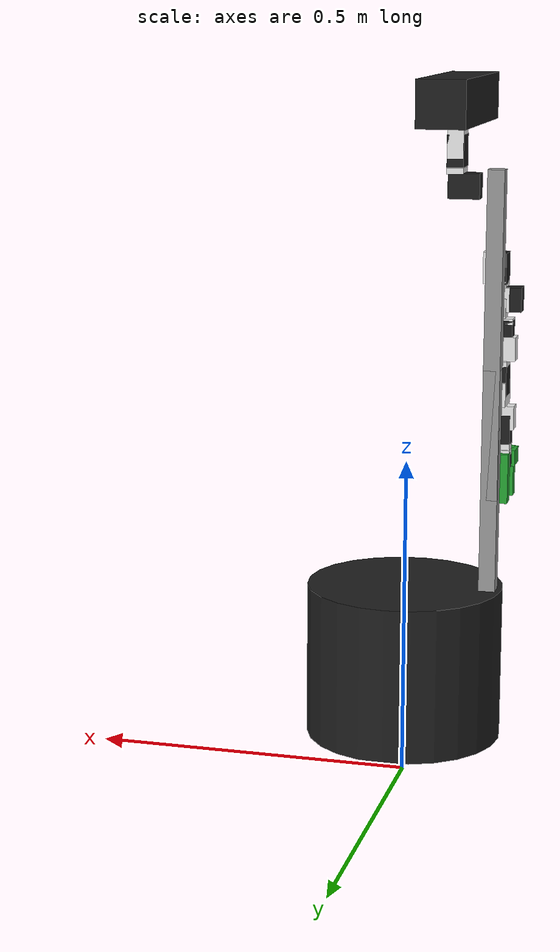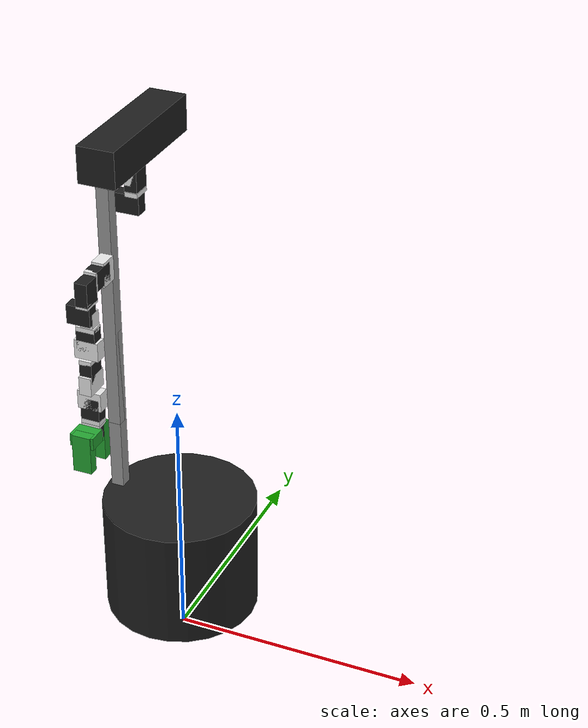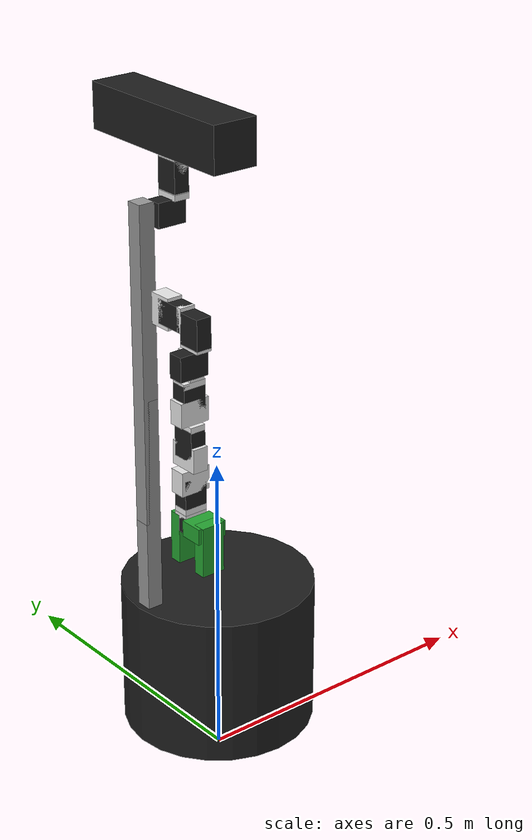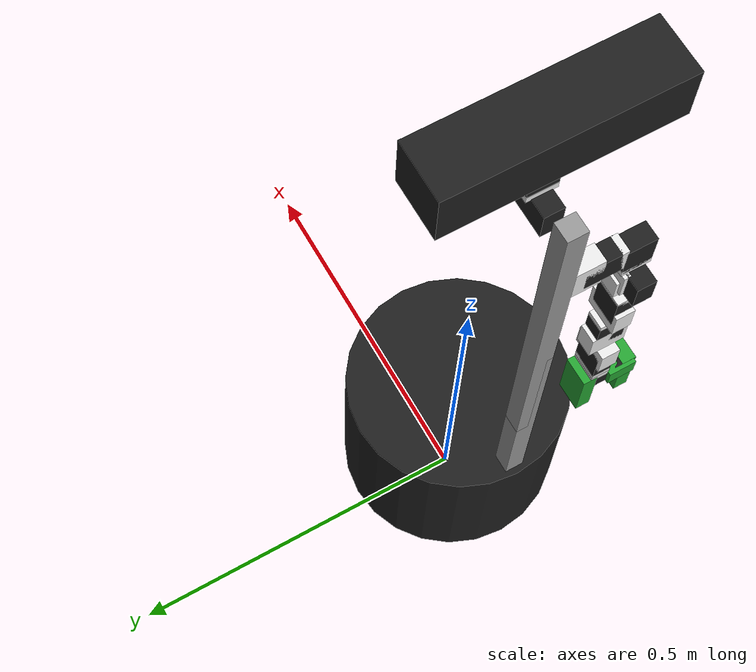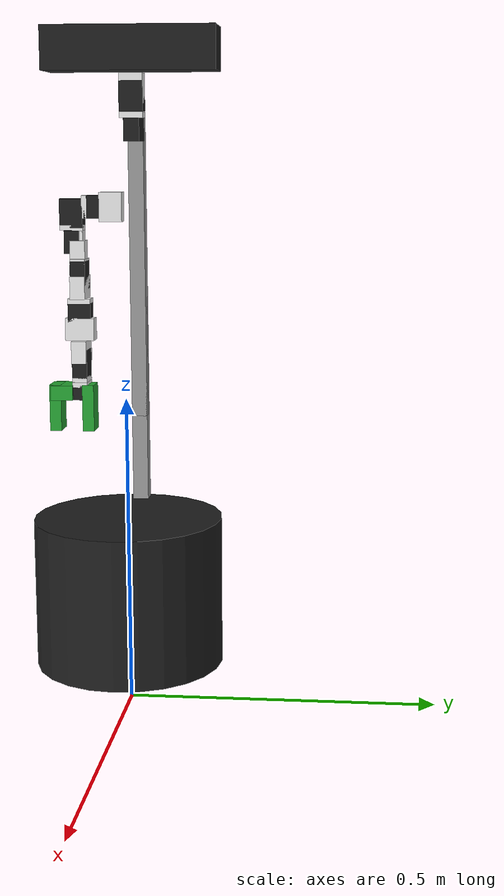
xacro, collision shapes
<?xml version="1.0"?>

<robot name="pi_robot" xmlns:xacro="http://ros.org/wiki/xacro">

   <!-- Define a number of dimensions using properties -->
   <property name="lower_torso_offset_x" value="-0.13" />
   <property name="lower_torso_offset_y" value="0.0" />
   <property name="lower_torso_offset_z" value="0.335" />

   <property name="head_offset_x" value="0.0595" />
   <property name="head_offset_y" value="0.0036" />
   <property name="head_offset_z" value="0.225" />

   <property name="arm_offset_x" value="0.01" />
   <property name="arm_offset_y" value="-0.05" />
   <property name="arm_offset_z" value="0.1" />

   <!-- The following xacro:include files set up definitions of parts of the robot body -->
   <xacro:include filename="$(find rbx2_description)/urdf/materials.urdf.xacro" />
   <xacro:include filename="$(find rbx2_description)/urdf/pi_robot/pi_base.urdf.xacro" />
   <xacro:include filename="$(find rbx2_description)/urdf/pi_robot/pi_tele_torso.urdf.xacro" />
   <xacro:include filename="$(find rbx2_description)/urdf/pi_robot/pi_pan_tilt_head.urdf.xacro" />
   <xacro:include filename="$(find rbx2_description)/urdf/pi_robot/pi_arm.urdf.xacro" />
   <xacro:include filename="$(find rbx2_description)/urdf/pi_robot/pi_gripper.urdf.xacro" />

   <!-- Now we can start using the macros included above to define the actual robot -->

   <!-- Start with the base and wheels -->
   <base name="base" color="Black"/>

   <!-- Attach the torso -->
   <torso name="torso" parent="base" color="Grey">
      <origin xyz="${lower_torso_offset_x} ${lower_torso_offset_y} ${lower_torso_offset_z}" rpy="0 0 0" />
   </torso>

   <!-- Attach the pan and tilt head -->
   <head name="head_base" parent="upper_torso" color="White">
      <origin xyz="${head_offset_x} ${head_offset_y} ${head_offset_z}" rpy="${PI/2} 0 ${PI/2}" />
   </head>

   <!-- Attach the right arm -->
   <arm side="right" reflect="-1" parent="upper_torso" color="White">
     <origin xyz="${arm_offset_x} ${arm_offset_y} ${arm_offset_z}" rpy="0 0 ${PI/2}" />
   </arm>

   <!-- Attach the right gripper -->
   <gripper side="right" reflect="-1" parent="right_arm_gripper_attach" color="Green">
     <origin xyz="0 0 0" rpy="0 0 0" />
   </gripper>

</robot>

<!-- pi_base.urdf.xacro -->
<robot name="base" xmlns:xacro="http://ros.org/wiki/xacro">

  <!-- Define a number of dimensions using properties -->
  <property name="wheel_length" value="0.02032" />
  <property name="wheel_radius" value="0.06191" />
  <property name="wheel_offset_x" value="0.07" />
  <property name="wheel_offset_y" value="0.13" />
  <property name="wheel_offset_z" value="-0.0035" />

  <property name="base_radius" value="0.152" />
  <property name="base_height" value="0.241" />

  <property name="base_mesh_scale" value="0.0254" />

  <property name="PI" value="3.1415" />

  <!-- define a wheel -->
  <macro name="wheel" params="suffix parent reflect color">
    <joint name="${parent}_${suffix}_wheel_joint" type="continuous">
      <axis xyz="0 0 1" />
      <limit effort="100" velocity="100"/>
      <safety_controller k_velocity="10" />
      <origin xyz="${wheel_offset_x} ${reflect*wheel_offset_y} ${wheel_offset_z}" rpy="${reflect*1.57} 0 0" />
      <parent link="${parent}_link"/>
      <child link="${parent}_${suffix}_wheel_link"/>
    </joint>
    <link name="${parent}_${suffix}_wheel_link">
      <visual>
        <origin xyz="0 0 0" rpy="0 0 0" />
        <geometry>
          <cylinder radius="${wheel_radius}" length="${wheel_length}"/>
        </geometry>
        <material name="${color}" />
      </visual>
    </link>
  </macro>

  <!-- The base xacro macro -->
  <macro name="base" params="name color">
    <link name="${name}_link">
      <visual>
        <origin xyz="0 0 0" rpy="0 0 ${PI/2}" />
        <geometry>
           <mesh filename="package://rbx2_description/meshes/pi_robot/pi_robot_base.stl" scale="${base_mesh_scale} ${base_mesh_scale} ${base_mesh_scale}" />
        </geometry>
        <material name="${color}" />
      </visual>
      <collision>
        <origin xyz="0 0 ${base_height/2}" rpy="0 0 0" />
        <geometry>
           <cylinder radius="${base_radius}" length="${base_height}"/>
        </geometry>
      </collision>
    </link>
  </macro>

  <link name="base_footprint">
      <visual>
        <origin xyz="0 0 0" rpy="0 0 0" />
        <geometry>
          <box size="0.05 0.05 0.001" />
        </geometry>
        <material name="TransparentGreen" />
      </visual>
  </link>

  <joint name="base_joint" type="fixed">
    <origin xyz="0 0 ${wheel_radius - wheel_offset_z}" rpy="0 0 0" />
    <parent link="base_footprint"/>
    <child link="base_link" />
  </joint>

   <!-- Add the drive wheels -->
   <wheel parent="base" suffix="l" reflect="1" color="Orange"/>
   <wheel parent="base" suffix="r" reflect="-1" color="Orange"/>

</robot>

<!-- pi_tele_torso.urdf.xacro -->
<robot name="torso" xmlns:xacro="http://ros.org/wiki/xacro">

  <!-- Define a number of dimensions using properties -->
  <property name="lower_torso_size_x" value="0.0254" />
  <property name="lower_torso_size_y" value="0.0254" />
  <property name="lower_torso_size_z" value="0.5" />

  <property name="upper_torso_size_x" value="0.0254" />
  <property name="upper_torso_size_y" value="0.0254" />
  <property name="upper_torso_size_z" value="0.5" />

  <!-- Define the torso -->
  <macro name="torso" params="parent name color *origin">
    <joint name="${parent}_${name}_joint" type="fixed">
      <xacro:insert_block name="origin" />
      <parent link="${parent}_link"/>
      <child link="lower_${name}_link"/>
    </joint>

    <link name="lower_${name}_link">
      <visual>
        <origin xyz="0 0 0" rpy="0 0 0" />
        <geometry>
          <box size="${lower_torso_size_x} ${lower_torso_size_y} ${lower_torso_size_z}" />
        </geometry>
        <material name="${color}" />
      </visual>
      <collision>
        <origin xyz="0 0 0" rpy="0 0 0" />
        <geometry>
          <box size="${lower_torso_size_x} ${lower_torso_size_y} ${lower_torso_size_z}" />
        </geometry>
      </collision>
    </link>

    <link name="upper_${name}_link">
      <visual>
        <origin xyz="0 0 0" rpy="0 0 0" />
        <geometry>
          <box size="${upper_torso_size_x} ${upper_torso_size_y} ${upper_torso_size_z}" />
        </geometry>
        <material name="${color}" />
      </visual>
      <collision>
        <origin xyz="0 0 0" rpy="0 0 0" />
        <geometry>
          <box size="${upper_torso_size_x} ${upper_torso_size_y} ${upper_torso_size_z}" />
        </geometry>
      </collision>
    </link>

    <joint name="${name}_joint" type="prismatic">
      <parent link="lower_${name}_link"/>
      <child link="upper_${name}_link"/>
      <axis xyz="0 0 1" />
      <origin xyz="0 0 0.3" rpy="0 0 0"/>
      <limit lower="-0.15" upper="0.15" velocity="0.1" effort="1.0" />
    </joint>

  </macro>

</robot>

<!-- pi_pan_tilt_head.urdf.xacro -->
<robot name="pan_tilt_head" xmlns:xacro="http://ros.org/wiki/xacro">

  <property name="camera_offset_x" value="0.0" />
  <property name="camera_offset_y" value="0.0" />
  <property name="camera_offset_z" value="0.0615" />

  <property name="camera_mesh_scale" value="1.0" />

  <xacro:include filename="$(find rbx2_description)/urdf/pi_robot/dynamixel_head_hardware.xacro" />
  <xacro:include filename="$(find rbx2_description)/urdf/pi_robot/kinect.urdf.xacro" />

  <macro name="head" params="parent name color *origin">
    <!-- head base joint -->
    <joint name="${name}_joint" type="fixed">
      <xacro:insert_block name="origin" />
      <parent link="${parent}_link"/>
      <child link="${name}_link" />
    </joint>
    <link name="${name}_link">
      <origin xyz="0 0 0" rpy="0 0 0" />
      <inertial>
        <mass value="0.00001" />
        <inertia ixx="1.0" ixy="0.0" ixz="0.0"
          iyy="1.0" iyz="0.0"
          izz="1.0" />
      </inertial>

      <visual>
        <origin xyz="0 0 0 " rpy="0 0 0" />
        <geometry>
           <cylinder length="0.00001" radius="0.01" />
        </geometry>
      </visual>

      <collision>
        <origin xyz="0 0 0 " rpy="0 0 0" />
        <geometry>
           <cylinder length="0.00001" radius="0.01" />
        </geometry>
      </collision>
    </link>

    <!-- head pan joint -->
    <dynamixel_AX12_fixed parent="head_base" name="head_pan_servo">
       <origin xyz="0 0 0" rpy="0 0 0" />
    </dynamixel_AX12_fixed>

    <bioloid_F3_head_revolute parent="head_pan_servo" name="head_pan_bracket" joint_name="head_pan" ulimit="2.53" llimit="-2.53" vlimit="1.571" color="${color}">
       <origin xyz="0 ${AX12_WIDTH/2 + 0.005} 0" rpy="${-PI/2} ${PI/2} ${PI}" />
    </bioloid_F3_head_revolute>

    <!--head tilt joint -->
    <dynamixel_AX12_fixed parent="head_pan_bracket" name="head_tilt_servo">
       <origin xyz="0 0 ${-AX12_HEIGHT-F10_HEIGHT+0.001}" rpy="0 ${PI} 0"/>
    </dynamixel_AX12_fixed>

    <bioloid_F2_head_revolute parent="head_tilt_servo" name="head_tilt_bracket" joint_name="head_tilt" ulimit="2.53" llimit="-2.53" vlimit="1.571" color="${color}" >
       <origin xyz="0 0 0" rpy="0 0 0" />
    </bioloid_F2_head_revolute>

   <!-- Attach the camera -->
   <camera name="camera" parent="head_tilt_bracket" color="Black">
      <origin xyz="${camera_offset_x} ${camera_offset_y} ${camera_offset_z}" rpy="0 0 0" />
   </camera>

 </macro>

</robot>

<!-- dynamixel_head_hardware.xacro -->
<robot name="head_hardware" xmlns:xacro="http://ros.org/wiki/xacro">

  <property name="PI" value="3.14159"/>
  <property name="DYNAMIXEL_MESH_SCALE" value="0.001"/>

  <property name="F10_HEIGHT" value="0.004"/>

  <property name="F4_WIDTH" value="0.0480"/>
  <property name="F4_HEIGHT" value="0.0625"/>
  <property name="F4_DEPTH" value="0.0245"/>

  <property name="F2_DEPTH" value="0.0245"/>
  <property name="F2_WIDTH" value="0.0480"/>
  <property name="F2_HEIGHT" value="0.0380"/>

  <property name="F3_WIDTH" value="0.038"/>
  <property name="F3_HEIGHT" value="0.009"/>
  <property name="F3_DEPTH" value="0.025"/>

  <property name="AX12_HEIGHT" value="0.0385"/>
  <property name="AX12_WIDTH" value="0.035"/>
  <property name="AX12_DEPTH" value="0.049"/>

  <macro name="bioloid_F10_fixed" params="parent name color *origin">
    <joint name="${name}_joint" type="fixed">
      <xacro:insert_block name="origin"/>
      <parent link="${parent}_link"/>
      <child link="${name}_link" />
    </joint>

    <link name="${name}_link">
      <inertial>
        <mass value="0.00001" />
        <origin xyz="0 0 0" />
        <inertia ixx="1.0" ixy="0.0" ixz="0.0"
          iyy="1.0" iyz="0.0"
          izz="1.0" />
      </inertial>

      <visual>
        <origin xyz="0 0 0 " rpy="0 0 0" />
        <geometry>
          <mesh filename="package://rbx2_description/meshes/F10.stl" scale="${DYNAMIXEL_MESH_SCALE} ${DYNAMIXEL_MESH_SCALE} ${DYNAMIXEL_MESH_SCALE}"/>
        </geometry>
        <material name="${color}"/>
      </visual>

      <collision>
        <origin xyz="0 0 0" rpy="0 0 0" />
        <geometry>
          <box size="0.025 0.038 0.004"/>
        </geometry>
      </collision>
    </link>
  </macro>

  <macro name="bioloid_F3_fixed" params="parent name color *origin">
    <joint name="${name}_joint" type="fixed">
      <xacro:insert_block name="origin"/>
      <parent link="${parent}_link"/>
      <child link="${name}_link" />
    </joint>

    <link name="${name}_link">
      <inertial>
        <mass value="0.00001" />
        <origin xyz="0 0 0" />
        <inertia ixx="1.0" ixy="0.0" ixz="0.0"
          iyy="1.0" iyz="0.0"
          izz="1.0" />
      </inertial>

      <visual>
        <origin xyz="0 0 0 " rpy="0 0 0" />
        <geometry>
          <mesh filename="package://rbx2_description/meshes/F3.stl" scale="${DYNAMIXEL_MESH_SCALE} ${DYNAMIXEL_MESH_SCALE} ${DYNAMIXEL_MESH_SCALE}"/>
        </geometry>
        <material name="${color}"/>
      </visual>

      <collision>
        <origin xyz="0 0 0" rpy="0 0 0" />
        <geometry>
          <box size="${F3_WIDTH} ${F3_HEIGHT} ${F3_DEPTH}"/>
        </geometry>
      </collision>
    </link>
  </macro>

  <macro name="dynamixel_AX12_fixed" params="parent name *origin">
    <joint name="${name}_joint" type="fixed">
      <xacro:insert_block name="origin" />
      <parent link="${parent}_link"/>
      <child link="${name}_link" />
    </joint>

    <link name="${name}_link">
      <inertial>
        <mass value="0.00001" />
        <origin xyz="0 0 0" />
        <inertia ixx="1.0" ixy="0.0" ixz="0.0"
          iyy="1.0" iyz="0.0"
          izz="1.0" />
      </inertial>

      <visual>
        <origin xyz="0 0 0 " rpy="0 0 0" />
        <geometry>
          <mesh filename="package://rbx2_description/meshes/ax12.stl" scale="${DYNAMIXEL_MESH_SCALE} ${DYNAMIXEL_MESH_SCALE} ${DYNAMIXEL_MESH_SCALE}"/>
        </geometry>
        <material name="Black"/>
      </visual>

      <collision>
        <origin xyz="0 0 -0.01241" rpy="0 0 0" />
        <geometry>
          <box size="${AX12_HEIGHT} ${AX12_WIDTH} ${AX12_DEPTH}"/>
        </geometry>
      </collision>
    </link>
  </macro>

  <macro name="bioloid_F3_head_revolute" params="parent name joint_name ulimit llimit vlimit color *origin">
    <joint name="${joint_name}_joint" type="revolute">
      <xacro:insert_block name="origin" />
      <parent link="${parent}_link"/>
       <axis xyz="0 0 -1"/>
       <limit lower="${llimit}" upper="${ulimit}" velocity="${vlimit}" effort="1.0" />
      <child link="${name}_link" />
    </joint>

    <link name="${name}_link">
      <inertial>
        <mass value="0.00001" />
        <origin xyz="0 0 0" />
        <inertia ixx="1.0" ixy="0.0" ixz="0.0"
          iyy="1.0" iyz="0.0"
          izz="1.0" />
      </inertial>

      <visual>
        <origin xyz="0 0 0 " rpy="0 0 0" />
        <geometry>
          <mesh filename="package://rbx2_description/meshes/F3.stl" scale="${DYNAMIXEL_MESH_SCALE} ${DYNAMIXEL_MESH_SCALE} ${DYNAMIXEL_MESH_SCALE}"/>
        </geometry>
        <material name="${color}"/>
      </visual>

      <collision>
        <origin xyz="0 0 0" rpy="0 0 0" />
        <geometry>
           <box size="${F3_DEPTH} ${F3_WIDTH} ${F3_HEIGHT}"/>
        </geometry>
      </collision>
    </link>
  </macro>

  <macro name="bioloid_F4_head_revolute" params="parent name joint_name ulimit llimit vlimit color *origin">
    <joint name="${joint_name}_joint" type="revolute">
      <xacro:insert_block name="origin"/>
      <parent link="${parent}_link"/>
      <axis xyz="0 -1 0"/>
      <limit lower="${llimit}" upper="${ulimit}" velocity="${vlimit}" effort="1.0" />
      <child link="${name}_link" />
    </joint>

    <link name="${name}_link">
      <inertial>
        <mass value="0.00001" />
        <origin xyz="0 0 0" />
        <inertia ixx="1.0" ixy="0.0" ixz="0.0"
          iyy="1.0" iyz="0.0"
          izz="1.0" />
      </inertial>

      <visual>
        <origin xyz="0 0 0 " rpy="0 0 0" />
        <geometry>
          <mesh filename="package://rbx2_description/meshes/F4.stl" scale="${DYNAMIXEL_MESH_SCALE} ${DYNAMIXEL_MESH_SCALE} ${DYNAMIXEL_MESH_SCALE}"/>
        </geometry>
        <material name="${color}"/>
      </visual>

      <collision>
        <origin xyz="0 0 0" rpy="0 0 0" />
        <geometry>
          <box size="${F4_WIDTH} ${F4_HEIGHT} ${F4_DEPTH}"/>
        </geometry>
      </collision>
    </link>
  </macro>

  <macro name="bioloid_F2_head_revolute" params="parent name joint_name ulimit llimit vlimit color *origin">
    <joint name="${joint_name}_joint" type="revolute">
      <xacro:insert_block name="origin" />
      <parent link="${parent}_link"/>
      <axis xyz="0 1 0"/>
      <limit lower="${llimit}" upper="${ulimit}" velocity="${vlimit}" effort="1.0" />
      <child link="${name}_link" />
    </joint>

    <link name="${name}_link">
      <inertial>
        <mass value="0.00001" />
        <origin xyz="0 0 0" />
        <inertia ixx="1.0" ixy="0.0" ixz="0.0"
          iyy="1.0" iyz="0.0"
          izz="1.0" />
      </inertial>

      <visual>
        <origin xyz="0 0 0 " rpy="0 0 0" />
        <geometry>
          <mesh filename="package://rbx2_description/meshes/F2.stl" scale="${DYNAMIXEL_MESH_SCALE} ${DYNAMIXEL_MESH_SCALE} ${DYNAMIXEL_MESH_SCALE}"/>
        </geometry>
        <material name="${color}"/>
      </visual>

      <collision>
        <origin xyz="0 0 0" rpy="0 0 0" />
        <geometry>
          <box size="${F2_DEPTH} ${F2_HEIGHT} ${F2_WIDTH}"/>
        </geometry>
      </collision>
    </link>
  </macro>

</robot>

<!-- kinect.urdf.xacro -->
<robot name="kinect" xmlns:xacro="http://ros.org/wiki/xacro">

   <!-- Define a number of dimensions using properties -->
   <property name="kinect_size_x" value="0.07271" />
   <property name="kinect_size_y" value="0.27794" />
   <property name="kinect_size_z" value="0.070" />

   <property name="camera_mesh_scale" value="1.0" />

   <property name="PI" value="3.1415" />

   <!-- Define a camera link for a Kinect -->
   <macro name="camera" params="parent name color *origin">
      <joint name="${parent}_${name}_joint" type="fixed">
         <xacro:insert_block name="origin" />
         <parent link="${parent}_link"/>
         <child link="${name}_link"/>
      </joint>
      <link name="${name}_link">
         <visual>
            <origin xyz="0 0 0" rpy="0 0 ${PI/2}" />
            <geometry>
               <mesh filename="package://rbx2_description/meshes/kinect.dae" scale="${camera_mesh_scale} ${camera_mesh_scale} ${camera_mesh_scale}" />
            </geometry>
            <material name="${color}" />
         </visual>
         <collision>
           <origin xyz="0 0 0" rpy="0 0 0" />
           <geometry>
              <box size="${kinect_size_x} ${kinect_size_y} ${kinect_size_z}"/>
           </geometry>
         </collision>
      </link>

      <joint name="camera_depth_joint" type="fixed">
         <origin xyz="0 0.0125 0.015" rpy="0 0 0" />
          <parent link="camera_link" />
          <child link="camera_depth_frame" />
      </joint>

      <link name="camera_depth_frame">
      <inertial>
         <mass value="0.000001" />
         <origin xyz="0 0 0" />
         <inertia ixx="0.0001" ixy="0.0" ixz="0.0"
            iyy="0.0001" iyz="0.0"
            izz="0.0001" />
         </inertial>
      </link>

      <joint name="camera_depth_optical_joint" type="fixed">
         <origin xyz="0 0 0" rpy="${-PI/2} 0 ${-PI/2}" />
         <parent link="camera_depth_frame" />
         <child link="camera_depth_optical_frame" />
      </joint>

      <link name="camera_depth_optical_frame">
         <inertial>
            <mass value="0.000001" />
            <origin xyz="0 0 0" />
            <inertia ixx="0.0001" ixy="0.0" ixz="0.0"
               iyy="0.0001" iyz="0.0"
               izz="0.0001" />
         </inertial>
      </link>

      <joint name="camera_rgb_joint" type="fixed">
         <origin xyz="0 -0.0125 0.015" rpy="0 0 0" />
         <parent link="camera_link" />
         <child link="camera_rgb_frame" />
      </joint>

      <link name="camera_rgb_frame">
         <inertial>
         <mass value="0.000001" />
         <origin xyz="0 0 0" />
         <inertia ixx="0.0001" ixy="0.0" ixz="0.0"
            iyy="0.0001" iyz="0.0"
            izz="0.0001" />
         </inertial>
      </link>

      <joint name="camera_rgb_optical_joint" type="fixed">
         <origin xyz="0 0 0" rpy="${-PI/2} 0 ${-PI/2}" />
         <parent link="camera_rgb_frame" />
         <child link="camera_rgb_optical_frame" />
      </joint>

      <link name="camera_rgb_optical_frame">
         <inertial>
            <mass value="0.000001" />
            <origin xyz="0 0 0" />
            <inertia ixx="0.0001" ixy="0.0" ixz="0.0"
               iyy="0.0001" iyz="0.0"
               izz="0.0001" />
         </inertial>
      </link>

   </macro>

</robot>

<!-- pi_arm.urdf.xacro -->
<robot name="arm" xmlns:xacro="http://ros.org/wiki/xacro">

  <xacro:include filename="$(find rbx2_description)/urdf/pi_robot/dynamixel_arm_hardware.xacro" />

  <macro name="arm" params="side reflect parent color *origin">
    <link name="${side}_arm_base_link" />
    <joint name="${side}_arm_base_joint" type="fixed">
      <xacro:insert_block name="origin" />
      <parent link="${parent}_link" />
      <child link="${side}_arm_base_link" />
    </joint>

    <!-- shoulder pan -->
    <bioloid_F2_fixed parent="${side}_arm_base" name="${side}_arm_shoulder_F2_0" color="${color}">
      <origin xyz="0 0 0" rpy="${PI/2} 0 ${PI/2}" />
    </bioloid_F2_fixed>

    <dynamixel_AX12_revolute parent="${side}_arm_shoulder_F2_0" name="${side}_arm_shoulder_pan" vlimit="3.14" llimit="-1.57" ulimit="1.57">
      <origin xyz="0 0 0" rpy="0 0 0" />
      <axis xyz="0 1 0" />
    </dynamixel_AX12_revolute>

    <!-- shoulder lift -->
    <bioloid_F3_fixed parent="${side}_arm_shoulder_pan" name="${side}_arm_shoulder_F3_0" color="${color}">
      <origin xyz="0 0 ${-AX12_HEIGHT - 0.002}" rpy="0 ${PI} 0" />
    </bioloid_F3_fixed>

    <dynamixel_AX12_revolute parent="${side}_arm_shoulder_F3_0" name="${side}_arm_shoulder_lift" vlimit="3.14" llimit="-3.14" ulimit="3.14">
      <origin xyz="0 0.002 ${(AX12_WIDTH)/2}" rpy="${PI/2} ${PI} ${PI}" />
      <axis xyz="0 1 0" />
    </dynamixel_AX12_revolute>

    <!-- shoulder roll -->
    <bioloid_F3_fixed parent="${side}_arm_shoulder_lift" name="${side}_arm_shoulder_F3_1" color="${color}">
      <origin xyz="0 0 ${-AX12_HEIGHT - 0.002}" rpy="${PI} 0 0" />
    </bioloid_F3_fixed>

    <dynamixel_AX12_revolute parent="${side}_arm_shoulder_F3_1" name="${side}_arm_shoulder_roll" vlimit="3.14" llimit="-3.14" ulimit="3.14">
      <origin xyz="0 0 ${AX12_HEIGHT/2}" rpy="${-PI/2} 0 ${-PI/2}" />
      <axis xyz="0 1 0" />
    </dynamixel_AX12_revolute>

    <bioloid_F3_fixed parent="${side}_arm_shoulder_roll" name="${side}_arm_shoulder_roll_F3_0" color="${color}">
      <origin xyz="${AX12_WIDTH/2} 0 ${-(AX12_DEPTH - F3_WIDTH)/2}" rpy="0 ${PI/2} 0" />
    </bioloid_F3_fixed>

    <bioloid_F9_fixed parent="${side}_arm_shoulder_roll_F3_0" name="${side}_arm_shoulder_roll_F9_0" color="${color}">
      <origin xyz="0 ${-F9_DEPTH/2 - 0.000} ${-F9_DEPTH/2 + 0.004}" rpy="0 ${PI/2} 0" />
    </bioloid_F9_fixed>

    <!-- elbow flex -->
    <bioloid_F3_fixed parent="${side}_arm_shoulder_roll_F9_0" name="${side}_arm_elbow_F3_0" color="${color}">
      <origin xyz="0 ${-AX12_HEIGHT/2 + 0.0035} 0" rpy="${PI/2} ${PI} ${PI}" />
    </bioloid_F3_fixed>

    <dynamixel_AX12_fixed parent="${side}_arm_elbow_F3_0" name="${side}_arm_elbow_flex_servo">
      <origin xyz="0 0 ${-(AX12_WIDTH + F3_HEIGHT/2)}" rpy="0 ${PI} 0" />
    </dynamixel_AX12_fixed>

    <bioloid_F2_revolute parent="${side}_arm_elbow_flex_servo" name="${side}_arm_elbow_flex" color="${color}" vlimit="3.14" llimit="-1.75" ulimit="1.75">
      <origin xyz="0 0 0" rpy="0 0 0" />
      <axis xyz="0 1 0" />
    </bioloid_F2_revolute>

    <!-- forearm flex -->
    <bioloid_F3_fixed parent="${side}_arm_elbow_flex" name="${side}_arm_forearm_F3_0" color="${color}">
      <origin xyz="0 0 ${AX12_HEIGHT/2 + F3_HEIGHT - 0.0015}" rpy="${PI} 0 ${PI/2}" />
    </bioloid_F3_fixed>

    <dynamixel_AX12_fixed parent="${side}_arm_forearm_F3_0" name="${side}_arm_forearm_flex_servo">
      <origin xyz="0 0 ${-(AX12_HEIGHT/2 + F2_DEPTH)}" rpy="${PI} 0 0" />
    </dynamixel_AX12_fixed>

    <bioloid_F2_revolute parent="${side}_arm_forearm_flex_servo" name="${side}_arm_forearm_flex" color="${color}" vlimit="3.14" llimit="-1.75" ulimit="1.75">
      <origin xyz="0 0 0" rpy="0 0 0" />
      <axis xyz="0 1 0" />
    </bioloid_F2_revolute>

    <bioloid_F2_fixed parent="${side}_arm_forearm_flex" name="${side}_arm_forearm_F2_0" color="${color}">
      <origin xyz="0 0 ${AX12_HEIGHT/2 + F2_HEIGHT - 0.004}" rpy="0 ${PI} ${PI/2}" />
    </bioloid_F2_fixed>

    <!-- wrist flex -->
    <dynamixel_AX12_revolute parent="${side}_arm_forearm_F2_0" name="${side}_arm_wrist_flex" vlimit="3.14" llimit="-1.75" ulimit="1.75">
      <origin xyz="0 0 0" rpy="0 0 0" />
      <axis xyz="0 1 0" />
    </dynamixel_AX12_revolute>

    <bioloid_F3_fixed parent="${side}_arm_wrist_flex" name="${side}_arm_wrist_F3_0" color="${color}">
      <origin xyz="0 0 ${-AX12_HEIGHT - F3_HEIGHT/2}" rpy="${PI} 0 0" />
    </bioloid_F3_fixed>

    <!-- gripper attach joint -->
    <bioloid_F3_fixed parent="${side}_arm_wrist_F3_0" name="${side}_arm_gripper_attach" color="${color}">
      <origin xyz="0 0 0.0005" rpy="${PI} 0 0" />
    </bioloid_F3_fixed>

  </macro>

</robot>

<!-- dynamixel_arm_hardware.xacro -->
<robot name="arm_hardware" xmlns:xacro="http://ros.org/wiki/xacro">

  <property name="PI" value="3.14159"/>
  <property name="DYNAMIXEL_MESH_SCALE" value="0.001"/>

  <property name="F2_WIDTH" value="0.0480"/>
  <property name="F2_HEIGHT" value="0.0380"/>
  <property name="F2_DEPTH" value="0.0245"/>

  <property name="F3_WIDTH" value="0.038"/>
  <property name="F3_HEIGHT" value="0.009"/>
  <property name="F3_DEPTH" value="0.025"/>

  <property name="F4_WIDTH" value="0.0480"/>
  <property name="F4_HEIGHT" value="0.0625"/>
  <property name="F4_DEPTH" value="0.0245"/>

  <property name="F9_DEPTH" value="0.025"/>

  <property name="F10_HEIGHT" value="0.004"/>
  <property name="F10_LENGTH" value="0.038"/>

  <property name="AX12_HEIGHT" value="0.0385"/>
  <property name="AX12_WIDTH" value="0.035"/>
  <property name="AX12_DEPTH" value="0.049"/>

  <property name="ARM_MESH_EXT" value="stl"/>

  <macro name="bioloid_F10_fixed" params="parent name color *origin">
    <joint name="${name}_joint" type="fixed">
      <xacro:insert_block name="origin" />
      <parent link="${parent}_link"/>
      <child link="${name}_link" />
    </joint>

    <link name="${name}_link">
      <inertial>
        <mass value="0.00001" />
        <origin xyz="0 0 0" />
        <inertia ixx="1.0" ixy="0.0" ixz="0.0"
          iyy="1.0" iyz="0.0"
          izz="1.0" />
      </inertial>

      <visual>
        <origin xyz=" 0 0 0 " rpy="0 0 0" />
        <geometry>
          <mesh filename="package://rbx2_description/meshes/F10.stl" scale="${DYNAMIXEL_MESH_SCALE} ${DYNAMIXEL_MESH_SCALE} ${DYNAMIXEL_MESH_SCALE}"/>
        </geometry>
        <material name="${color}"/>
      </visual>

      <collision>
        <origin xyz="0.0 0.0 0.0" rpy="0 0 0" />
        <geometry>
          <box size="0.025 0.038 0.004"/>
        </geometry>
      </collision>
    </link>
  </macro>

  <macro name="bioloid_F10_revolute" params="parent name color llimit ulimit vlimit *origin *axis">
    <joint name="${name}_joint" type="revolute">
      <xacro:insert_block name="origin" />
      <xacro:insert_block name="axis" />
      <limit effort="1.0" velocity="${vlimit}" lower="${llimit}" upper="${ulimit}" />
      <parent link="${parent}_link"/>
      <child link="${name}_link" />
    </joint>

    <link name="${name}_link">
      <inertial>
        <mass value="0.00001" />
        <origin xyz="0 0 0" />
        <inertia ixx="1.0" ixy="0.0" ixz="0.0"
          iyy="1.0" iyz="0.0"
          izz="1.0" />
      </inertial>

      <visual>
        <origin xyz=" 0 0 0 " rpy="0 0 0" />
        <geometry>
          <mesh filename="package://rbx2_description/meshes/F10.stl" scale="${DYNAMIXEL_MESH_SCALE} ${DYNAMIXEL_MESH_SCALE} ${DYNAMIXEL_MESH_SCALE}"/>
        </geometry>
        <material name="${color}"/>
      </visual>

      <collision>
        <origin xyz="0.0 0.0 0.0" rpy="0 0 0" />
        <geometry>
          <box size="0.025 0.038 0.004"/>
        </geometry>
      </collision>
    </link>
  </macro>

  <macro name="bioloid_F2_fixed" params="parent name color *origin">
    <joint name="${name}_joint" type="fixed">
      <xacro:insert_block name="origin" />
      <parent link="${parent}_link"/>
      <child link="${name}_link" />
    </joint>

    <link name="${name}_link">
      <inertial>
        <mass value="0.00001" />
        <origin xyz="0 0 0" />
        <inertia ixx="1.0" ixy="0.0" ixz="0.0"
          iyy="1.0" iyz="0.0"
          izz="1.0" />
      </inertial>

      <visual>
        <origin xyz=" 0 0 0 " rpy="0 0 0" />
        <geometry>
          <mesh filename="package://rbx2_description/meshes/F2.stl" scale="${DYNAMIXEL_MESH_SCALE} ${DYNAMIXEL_MESH_SCALE} ${DYNAMIXEL_MESH_SCALE}"/>
        </geometry>
        <material name="${color}"/>
      </visual>

      <collision>
        <origin xyz="0.0 0.0 0.00775" rpy="0 0 0" />
        <geometry>
          <box size="0.025 0.0485 0.0375"/>
        </geometry>
      </collision>
    </link>
  </macro>

  <macro name="finger" params="parent name color *origin">
    <joint name="${name}_joint" type="fixed">
      <xacro:insert_block name="origin" />
      <parent link="${parent}_link"/>
      <child link="${name}_link" />
    </joint>

    <link name="${name}_link">
      <inertial>
        <mass value="0.00001" />
        <origin xyz="0 0 0" />
        <inertia ixx="1.0" ixy="0.0" ixz="0.0"
          iyy="1.0" iyz="0.0"
          izz="1.0" />
      </inertial>

      <visual>
        <origin xyz=" 0 0 0 " rpy="0 0 0" />
        <geometry>
          <mesh filename="package://rbx2_description/meshes/finger.stl" scale="${DYNAMIXEL_MESH_SCALE} ${DYNAMIXEL_MESH_SCALE} ${DYNAMIXEL_MESH_SCALE}"/>
        </geometry>
        <material name="${color}"/>
      </visual>

      <collision>
        <origin xyz="0.02645 0.0 -0.00655" rpy="0 0 0" />
        <geometry>
          <box size="0.0783 0.03801 0.0193"/>
        </geometry>
      </collision>
    </link>
  </macro>

  <macro name="bioloid_F3_fixed" params="parent name color *origin">
    <joint name="${name}_joint" type="fixed">
      <xacro:insert_block name="origin" />
      <parent link="${parent}_link"/>
      <child link="${name}_link" />
    </joint>

    <link name="${name}_link">
      <inertial>
        <mass value="0.00001" />
        <origin xyz="0 0 0" />
        <inertia ixx="1.0" ixy="0.0" ixz="0.0"
          iyy="1.0" iyz="0.0"
          izz="1.0" />
      </inertial>

      <visual>
        <origin xyz=" 0 0 0 " rpy="0 0 0" />
        <geometry>
          <mesh filename="package://rbx2_description/meshes/F3.stl" scale="${DYNAMIXEL_MESH_SCALE} ${DYNAMIXEL_MESH_SCALE} ${DYNAMIXEL_MESH_SCALE}"/>
        </geometry>
        <material name="${color}"/>
      </visual>

      <collision>
        <origin xyz="0.0 0.0 -0.0045" rpy="0 0 0" />
        <geometry>
          <box size="0.025 0.038 0.009"/>
        </geometry>
      </collision>
    </link>
  </macro>

  <macro name="bioloid_F9_fixed" params="parent name color *origin">
    <joint name="${name}_joint" type="fixed">
      <xacro:insert_block name="origin" />
      <parent link="${parent}_link"/>
      <child link="${name}_link" />
    </joint>

    <link name="${name}_link">
      <inertial>
        <mass value="0.00001" />
        <origin xyz="0 0 0" />
        <inertia ixx="1.0" ixy="0.0" ixz="0.0"
          iyy="1.0" iyz="0.0"
          izz="1.0" />
      </inertial>

      <visual>
        <origin xyz=" 0 0 0 " rpy="0 0 0" />
        <geometry>
          <mesh filename="package://rbx2_description/meshes/F9.stl" scale="${DYNAMIXEL_MESH_SCALE} ${DYNAMIXEL_MESH_SCALE} ${DYNAMIXEL_MESH_SCALE}"/>
        </geometry>
        <material name="${color}"/>
      </visual>

      <collision>
        <origin xyz="0.0 0.0 -0.0045" rpy="0 0 0" />
        <geometry>
          <box size="0.025 0.030 0.025"/>
        </geometry>
      </collision>
    </link>
  </macro>

  <macro name="bioloid_F11_fixed" params="parent name color *origin">
    <joint name="${name}_joint" type="fixed">
      <xacro:insert_block name="origin" />
      <parent link="${parent}_link"/>
      <child link="${name}_link" />
    </joint>

    <link name="${name}_link">
      <inertial>
        <mass value="0.00001" />
        <origin xyz="0 0 0" />
        <inertia ixx="1.0" ixy="0.0" ixz="0.0"
          iyy="1.0" iyz="0.0"
          izz="1.0" />
      </inertial>

      <visual>
        <origin xyz=" 0 0 0 " rpy="0 0 0" />
        <geometry>
          <mesh filename="package://rbx2_description/meshes/F11.stl" scale="${DYNAMIXEL_MESH_SCALE} ${DYNAMIXEL_MESH_SCALE} ${DYNAMIXEL_MESH_SCALE}"/>
        </geometry>
        <material name="${color}"/>
      </visual>

      <collision>
        <origin xyz="0 0.028 0" rpy="0 0 0" />
        <geometry>
          <box size="0.030 0.056 0.032"/>
        </geometry>
      </collision>
    </link>
  </macro>

  <macro name="dynamixel_AX12_fixed" params="parent name *origin">
    <joint name="${name}_joint" type="fixed">
      <xacro:insert_block name="origin" />
      <parent link="${parent}_link"/>
      <child link="${name}_link" />
    </joint>

    <link name="${name}_link">
      <inertial>
        <mass value="0.00001" />
        <origin xyz="0 0 0" />
        <inertia ixx="1.0" ixy="0.0" ixz="0.0"
          iyy="1.0" iyz="0.0"
          izz="1.0" />
      </inertial>

      <visual>
        <origin xyz=" 0 0 0 " rpy="0 0 0" />
        <geometry>
          <mesh filename="package://rbx2_description/meshes/ax12.${ARM_MESH_EXT}" scale="${DYNAMIXEL_MESH_SCALE} ${DYNAMIXEL_MESH_SCALE} ${DYNAMIXEL_MESH_SCALE}"/>
        </geometry>
        <material name="Black"/>
      </visual>

      <collision>
        <origin xyz="0.0 0.0 -0.01241" rpy="0 0 0" />
        <geometry>
          <box size="0.025 0.038 0.04762"/>
        </geometry>
      </collision>
    </link>
  </macro>

  <macro name="dynamixel_AX12_revolute" params="parent name llimit ulimit vlimit *origin *axis">
    <joint name="${name}_joint" type="revolute">
      <xacro:insert_block name="origin" />
      <xacro:insert_block name="axis" />
      <limit effort="1.0" velocity="${vlimit}" lower="${llimit}" upper="${ulimit}" />
      <parent link="${parent}_link"/>
      <child link="${name}_link" />
    </joint>

    <link name="${name}_link">
      <inertial>
        <mass value="0.00001" />
        <origin xyz="0 0 0" />
        <inertia ixx="1.0" ixy="0.0" ixz="0.0"
          iyy="1.0" iyz="0.0"
          izz="1.0" />
      </inertial>

      <visual>
        <origin xyz=" 0 0 0 " rpy="0 0 0" />
        <geometry>
          <mesh filename="package://rbx2_description/meshes/ax12.${ARM_MESH_EXT}" scale="${DYNAMIXEL_MESH_SCALE} ${DYNAMIXEL_MESH_SCALE} ${DYNAMIXEL_MESH_SCALE}"/>
        </geometry>
         <material name="Black"/>
      </visual>

      <collision>
        <origin xyz="0.0 0.0 -0.01241" rpy="0 0 0" />
        <geometry>
          <box size="0.025 0.038 0.04762"/>
        </geometry>
      </collision>
    </link>
  </macro>

  <macro name="bioloid_F3_revolute" params="parent name color llimit ulimit vlimit *origin *axis">
    <joint name="${name}_joint" type="revolute">
      <xacro:insert_block name="origin" />
      <xacro:insert_block name="axis" />
      <limit effort="1.0" velocity="${vlimit}" lower="${llimit}" upper="${ulimit}" />
      <parent link="${parent}_link"/>
      <child link="${name}_link" />
    </joint>

    <link name="${name}_link">
      <inertial>
        <mass value="0.00001" />
        <origin xyz="0 0 0" />
        <inertia ixx="1.0" ixy="0.0" ixz="0.0"
          iyy="1.0" iyz="0.0"
          izz="1.0" />
      </inertial>

      <visual>
        <origin xyz=" 0 0 0 " rpy="0 0 0" />
        <geometry>
          <mesh filename="package://rbx2_description/meshes/F3.stl" scale="${DYNAMIXEL_MESH_SCALE} ${DYNAMIXEL_MESH_SCALE} ${DYNAMIXEL_MESH_SCALE}"/>
        </geometry>
        <material name="${color}"/>
      </visual>

      <collision>
        <origin xyz="0.0 0.0 -0.0045" rpy="0 0 0" />
        <geometry>
          <box size="0.025 0.038 0.009"/>
        </geometry>
      </collision>
    </link>
  </macro>

  <macro name="bioloid_F2_revolute" params="parent name color llimit ulimit vlimit *origin *axis">
    <joint name="${name}_joint" type="revolute">
      <xacro:insert_block name="origin" />
      <xacro:insert_block name="axis" />
      <limit effort="1.0" velocity="${vlimit}" lower="${llimit}" upper="${ulimit}" />
      <parent link="${parent}_link"/>
      <child link="${name}_link" />
    </joint>

    <link name="${name}_link">
      <inertial>
        <mass value="0.00001" />
        <origin xyz="0 0 0" />
        <inertia ixx="1.0" ixy="0.0" ixz="0.0"
          iyy="1.0" iyz="0.0"
          izz="1.0" />
      </inertial>

      <visual>
        <origin xyz=" 0 0 0 " rpy="0 0 0" />
        <geometry>
          <mesh filename="package://rbx2_description/meshes/F2.stl" scale="${DYNAMIXEL_MESH_SCALE} ${DYNAMIXEL_MESH_SCALE} ${DYNAMIXEL_MESH_SCALE}"/>
        </geometry>
        <material name="${color}"/>
      </visual>

      <collision>
        <origin xyz="0.0 0.0 0.00775" rpy="0 0 0" />
        <geometry>
          <box size="0.025 0.0485 0.0375"/>
        </geometry>
      </collision>
    </link>
  </macro>

  <macro name="bioloid_F4_revolute" params="parent name color llimit ulimit vlimit *origin *axis">
    <joint name="${name}_joint" type="revolute">
      <xacro:insert_block name="origin" />
      <xacro:insert_block name="axis" />
      <limit effort="1.0" velocity="${vlimit}" lower="${llimit}" upper="${ulimit}" />
      <parent link="${parent}_link"/>
      <child link="${name}_link" />
    </joint>

    <link name="${name}_link">
      <inertial>
        <mass value="0.00001" />
        <origin xyz="0 0 0" />
        <inertia ixx="1.0" ixy="0.0" ixz="0.0"
          iyy="1.0" iyz="0.0"
          izz="1.0" />
      </inertial>

      <visual>
        <origin xyz=" 0 0 0 " rpy="0 0 0" />
        <geometry>
          <mesh filename="package://rbx2_description/meshes/F4.stl" scale="${DYNAMIXEL_MESH_SCALE} ${DYNAMIXEL_MESH_SCALE} ${DYNAMIXEL_MESH_SCALE}"/>
        </geometry>
        <material name="${color}"/>
      </visual>

      <collision>
        <origin xyz="0.0 0.0 0.0215" rpy="0 0 0" />
        <geometry>
          <box size="0.028 0.0485 0.065"/>
        </geometry>
      </collision>
    </link>
  </macro>

</robot>

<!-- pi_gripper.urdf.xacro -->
<robot name="gripper" xmlns:xacro="http://ros.org/wiki/xacro">

   <property name="PI" value="3.14159"/>
   <property name="DYNAMIXEL_MESH_SCALE" value="0.001"/>

   <macro name="gripper" params="side reflect parent color *origin">

    <!-- gripper joint -->
    <dynamixel_AX12_fixed parent="${parent}" name="${side}_gripper_base">
      <origin xyz="-0.02275 0 ${-AX12_WIDTH/2}" rpy="0 ${PI/2} ${PI}" />
    </dynamixel_AX12_fixed>

    <!-- finger 1 -->
    <joint name="${side}_gripper_finger_joint" type="revolute">
      <origin xyz="0 0 0" rpy="0 0 0"/>
      <axis xyz="0 1 0"/>
      <limit effort="1.0" velocity="3.14" lower="-0.8" upper="0.5" />
      <parent link="${side}_gripper_base_link"/>
      <child link="${side}_gripper_active_finger_bracket_link" />
    </joint>

    <link name="${side}_gripper_active_finger_bracket_link">
      <inertial>
        <mass value="0.00001" />
        <origin xyz="0 0 0" />
        <inertia ixx="1.0" ixy="0.0" ixz="0.0"
          iyy="1.0" iyz="0.0"
          izz="1.0" />
      </inertial>

      <visual>
        <origin xyz="0 0 0" rpy="0 0 0" />
        <geometry>
          <mesh filename="package://rbx2_description/meshes/F2.stl" scale="${DYNAMIXEL_MESH_SCALE} ${DYNAMIXEL_MESH_SCALE} ${DYNAMIXEL_MESH_SCALE}"/>
        </geometry>
        <material name="${color}"/>
      </visual>

      <collision>
        <origin xyz="0.0 0.0 0.00775" rpy="0 0 0" />
        <geometry>
          <box size="0.025 0.0485 0.0375"/>
        </geometry>
      </collision>
    </link>

    <finger parent="${side}_gripper_active_finger_bracket" name="${side}_gripper_active_finger" color="${color}">
      <origin xyz="0 0 ${F2_DEPTH + 0.002}" rpy="0 0 0" />
    </finger>

    <!-- finger 2 -->
    <bioloid_F3_fixed parent="${side}_gripper_base" name="${side}_gripper_static_finger_bracket" color="${color}">
      <origin xyz="0 0 ${-AX12_HEIGHT-F10_HEIGHT}" rpy="0 ${PI} 0" />
    </bioloid_F3_fixed>

    <finger parent="${side}_gripper_static_finger_bracket" name="${side}_gripper_static_finger" color="${color}">
      <origin xyz="0 0 0" rpy="0 0 ${PI}" />
    </finger>

    <!-- Fake gripper link and joint for grasp planning -->
    <joint name="${side}_gripper_joint" type="fixed">
      <origin xyz="0.05 0 -0.008" rpy="${-PI/2} 0 0"/>
      <parent link="${side}_gripper_base_link"/>
      <child link="${side}_gripper_link"/>
    </joint>
    <link name="${side}_gripper_link">
      <visual>
        <origin xyz="-0.05 0 0" rpy="0 0 0"/>
        <geometry>
           <box size="0.001 0.001 0.001"/>
        </geometry>
      </visual>
      <collision>
        <origin xyz="-0.05 0 0" rpy="0 0 0"/>
        <geometry>
           <box size="0.001 0.001 0.001"/>
        </geometry>
      </collision>
    </link>

   </macro>
</robot>
